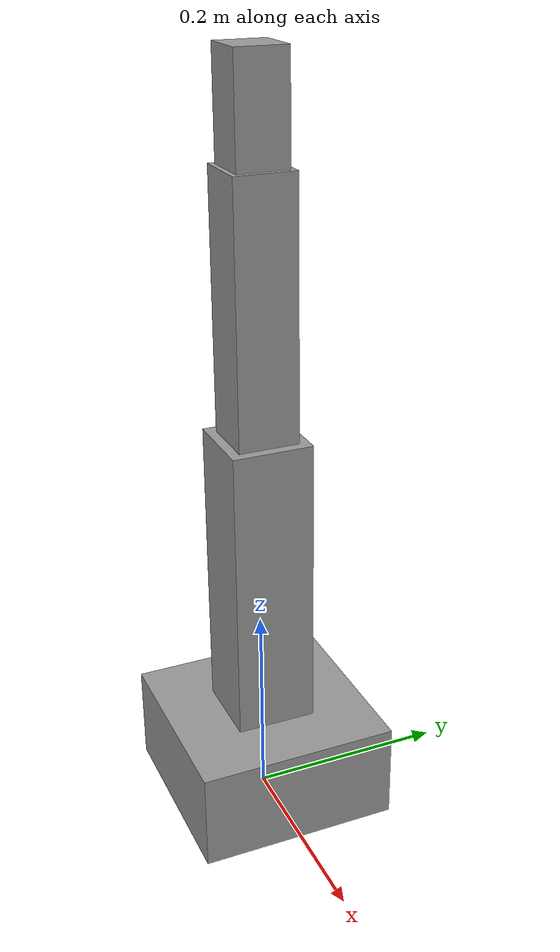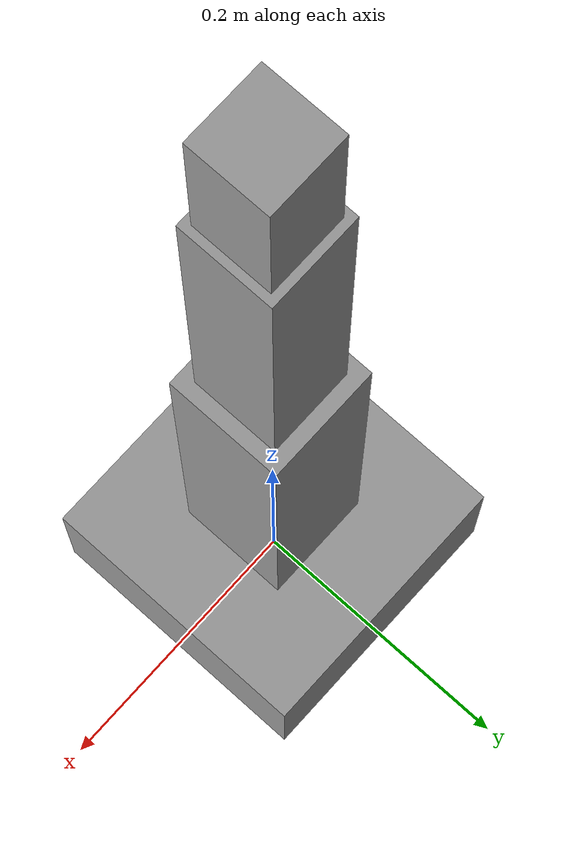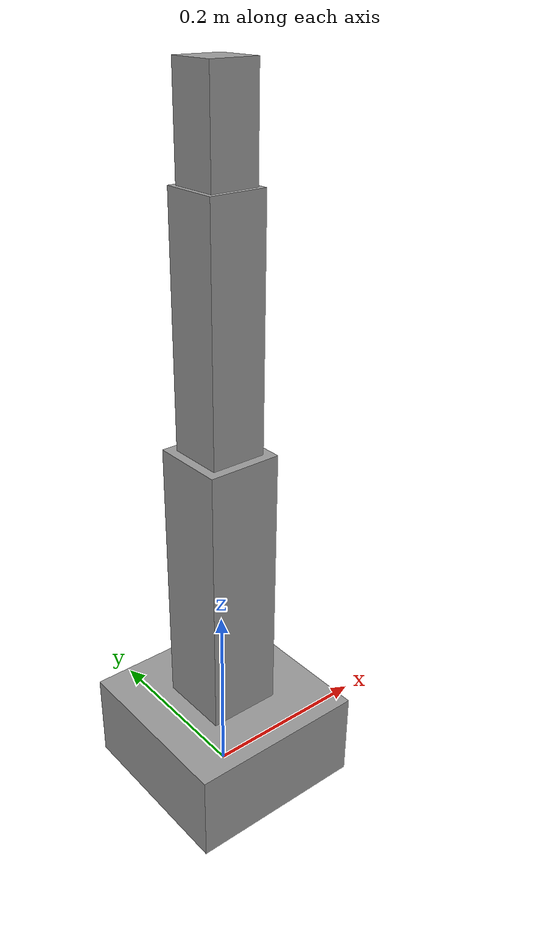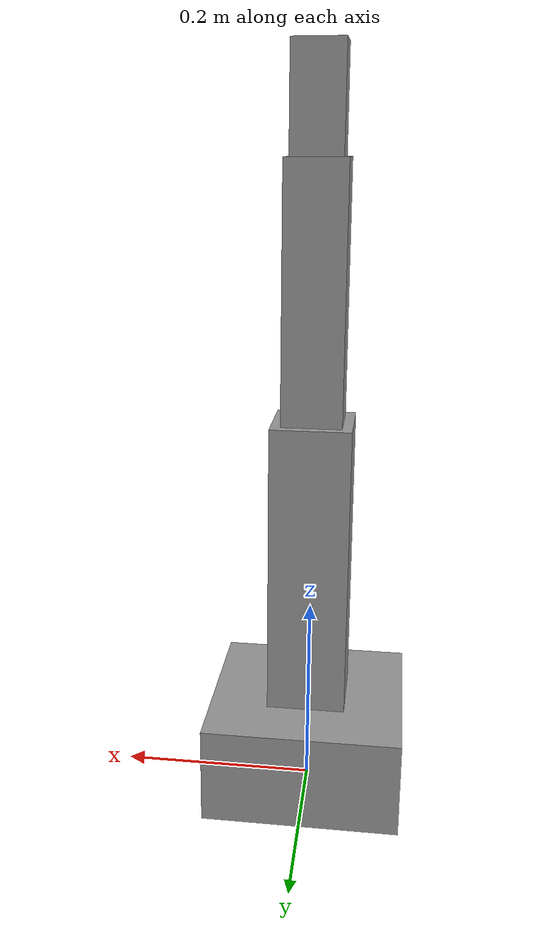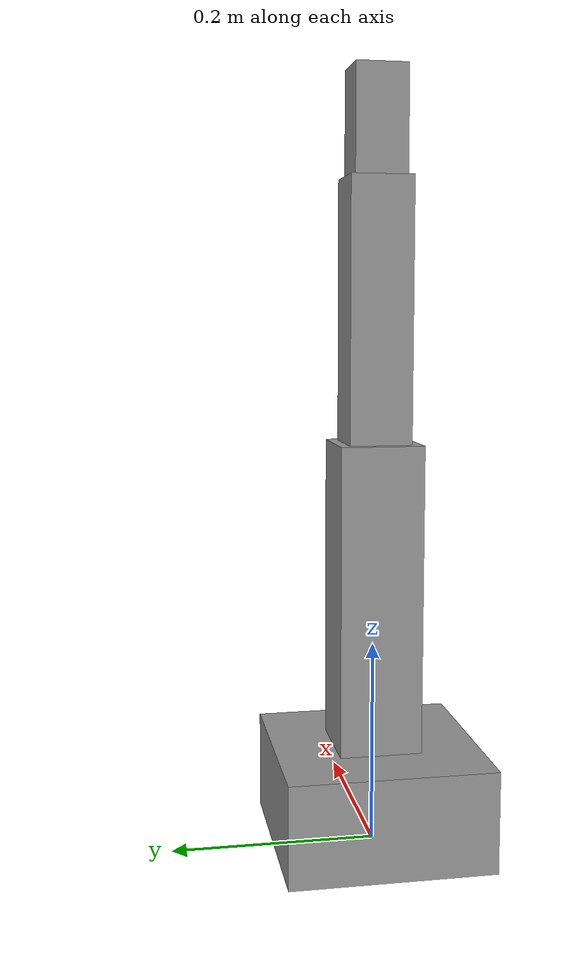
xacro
<?xml version="1.0"?>
<robot xmlns:xacro="http://www.ros.org/wiki/xacro" name="stepper_arm">

  <xacro:arg name="port" default="/dev/ttyUSB0"/>
  <xacro:arg name="baud" default="115200"/>

  <xacro:include filename="$(find stepper_hardware)/urdf/stepper_arm.ros2_control.xacro"/>
  <xacro:stepper_system port="$(arg port)" baud="$(arg baud)"/>

  <xacro:macro name="box_link" params="name x y z">
    <link name="${name}">
      <visual>
        <origin xyz="0 0 ${z/2}"/>
        <geometry><box size="${x} ${y} ${z}"/></geometry>
        <material name="grey"><color rgba="0.6 0.6 0.6 1"/></material>
      </visual>
      <collision>
        <origin xyz="0 0 ${z/2}"/>
        <geometry><box size="${x} ${y} ${z}"/></geometry>
      </collision>
      <inertial>
        <origin xyz="0 0 ${z/2}"/>
        <mass value="1.0"/>
        <inertia ixx="0.01" ixy="0" ixz="0" iyy="0.01" iyz="0" izz="0.01"/>
      </inertial>
    </link>
  </xacro:macro>

  <link name="world"/>
  <xacro:box_link name="base_link"     x="0.20" y="0.20" z="0.10"/>
  <xacro:box_link name="shoulder_link" x="0.08" y="0.08" z="0.30"/>
  <xacro:box_link name="elbow_link"    x="0.06" y="0.06" z="0.25"/>
  <xacro:box_link name="lift_link"     x="0.05" y="0.05" z="0.10"/>

  <joint name="world_to_base" type="fixed">
    <parent link="world"/>
    <child link="base_link"/>
  </joint>

  <joint name="joint_base" type="revolute">
    <parent link="base_link"/>
    <child link="shoulder_link"/>
    <origin xyz="0 0 0.10"/>
    <axis xyz="0 0 1"/>
    <limit lower="-1.5707963" upper="1.5707963" effort="50" velocity="1.5"/>
  </joint>

  <joint name="joint_shoulder" type="revolute">
    <parent link="shoulder_link"/>
    <child link="elbow_link"/>
    <origin xyz="0 0 0.30"/>
    <axis xyz="0 1 0"/>
    <limit lower="0.0" upper="2.0" effort="50" velocity="1.0"/>
  </joint>

  <joint name="joint_elbow" type="revolute">
    <parent link="elbow_link"/>
    <child link="lift_link"/>
    <origin xyz="0 0 0.25"/>
    <axis xyz="0 1 0"/>
    <limit lower="-2.0" upper="0.0" effort="50" velocity="1.0"/>
  </joint>

  <link name="tool_link"/>
  <joint name="joint_lift" type="prismatic">
    <parent link="lift_link"/>
    <child link="tool_link"/>
    <origin xyz="0 0 0.10"/>
    <axis xyz="0 0 1"/>
    <limit lower="0.0" upper="0.25" effort="100" velocity="0.03"/>
  </joint>

</robot>
